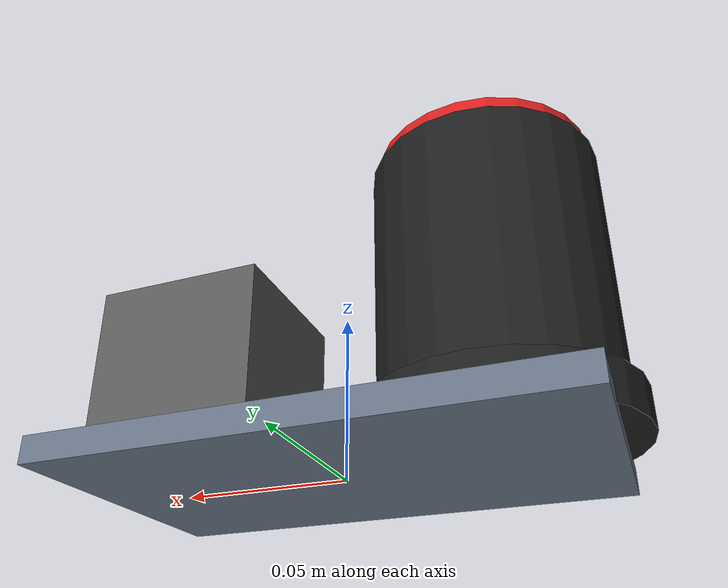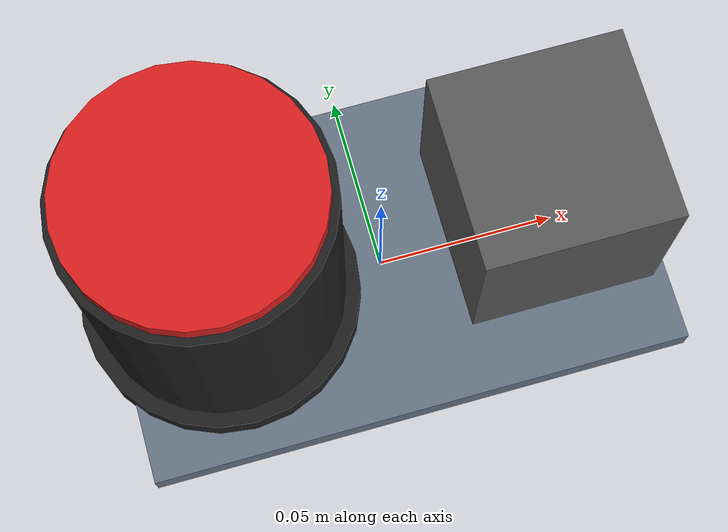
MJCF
<?xml version="1.0" encoding="UTF-8"?>
<mujoco model="libero_vlabench_physical_property_button">
  <compiler angle="radian"/>
  <worldbody>
    <body>
      <body name="object">
        <!-- One shared base makes the candidate-to-button pairing visible
             from both benchmark cameras. -->
        <geom name="pairing_plate" type="box" size="0.075 0.045 0.004"
              pos="0 0 0.004" group="1" contype="0" conaffinity="0"
              rgba="0.40 0.45 0.52 1"/>
        <geom name="button_pedestal" type="cylinder" size="0.034 0.042"
              pos="-0.045 0 0.048" mass="0.03" group="1"
              rgba="0.12 0.12 0.12 1"/>
        <geom name="button_cap" type="cylinder" size="0.032 0.010"
              pos="-0.045 0 0.085" mass="0.01" group="1"
              rgba="0.85 0.12 0.12 1" solref="0.002 1"/>
        <geom name="button_base" type="cylinder" size="0.038 0.006"
              pos="-0.045 0 0.010" mass="0.03" group="1"
              rgba="0.12 0.12 0.12 1"/>
        <!-- Alias post-processing changes only this visible cue. -->
        <geom name="candidate_visual" type="box" size="0.026 0.026 0.026"
              pos="0.045 0 0.034" mass="0.08" group="1"
              contype="0" conaffinity="0" rgba="0.35 0.35 0.35 1"/>
        <!-- Keep a matching inertial/collision envelope, invisible to cameras. -->
        <geom name="candidate_collision" type="box" size="0.024 0.024 0.024"
              pos="0.045 0 0.032" mass="0.08"
              contype="0" conaffinity="0" rgba="0 0 0 0"/>
        <site name="button_touch_site" type="cylinder" size="0.032 0.010"
              pos="-0.045 0 0.085" rgba="0 1 0 0"/>
        <site name="button_default_site" pos="-0.045 0 0.085" size="0.005"
              rgba="1 0 0 0"/>
      </body>
    </body>
  </worldbody>
  <sensor>
    <touch name="button_touch" site="button_touch_site"/>
  </sensor>
</mujoco>
